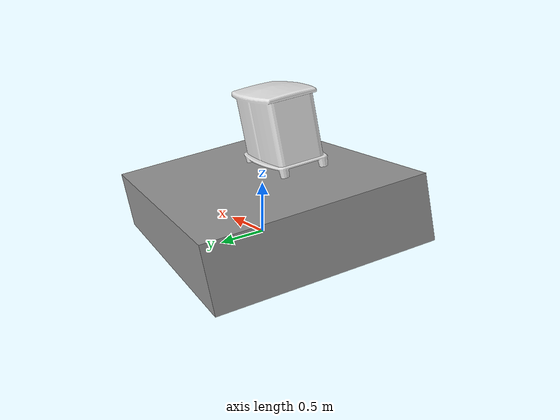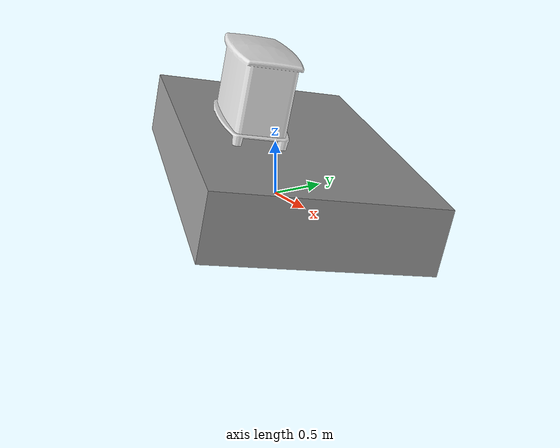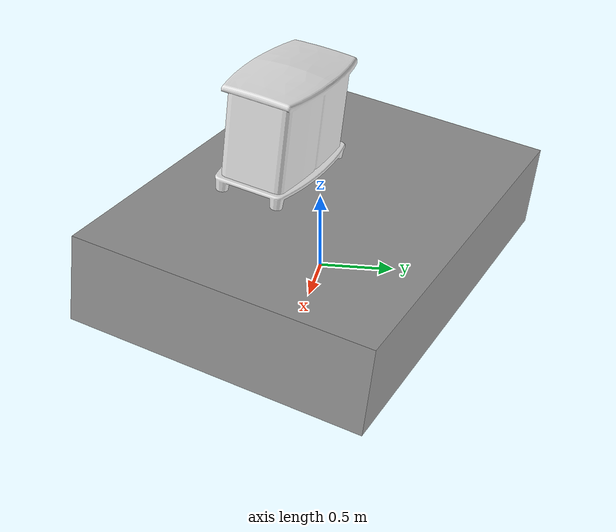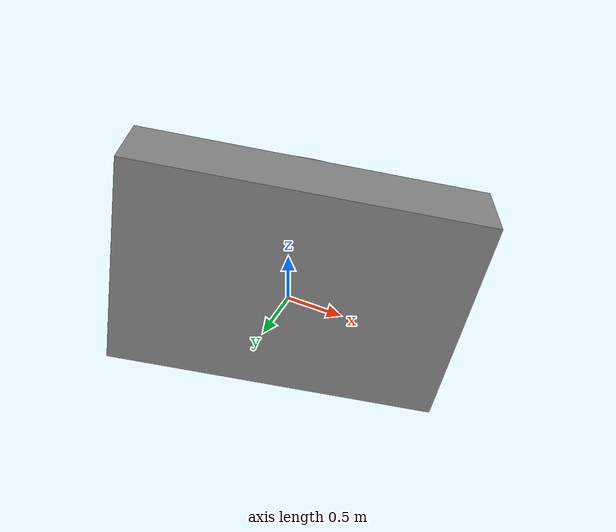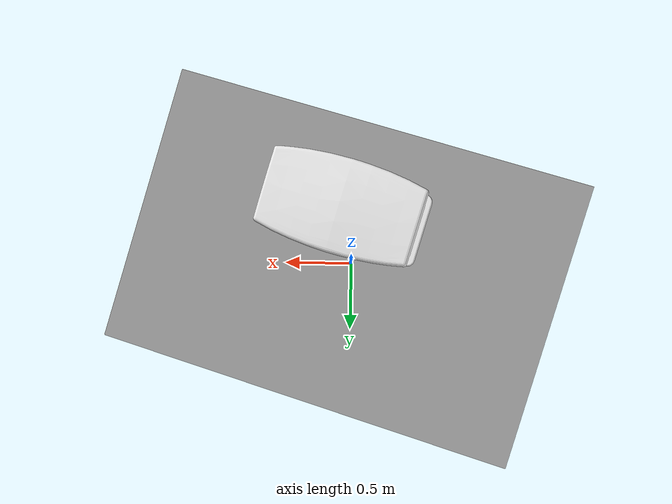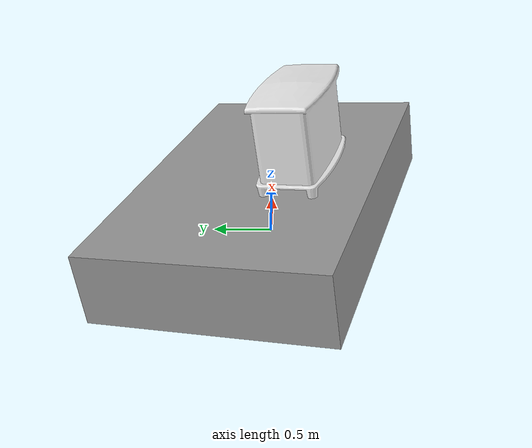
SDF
<?xml version='1.0'?>
<sdf version='1.6'>
  <model name='workpiece'>
    <link name='workbench'>
      <pose frame=''>0 0 0 0.095363 0.171487 1.28719</pose>
      <inertial>
        <pose frame=''>0 0.045455 0.327273 0 -0 0</pose>
        <mass>11000</mass>
        <inertia>
          <ixx>310.424</ixx>
          <ixy>0</ixy>
          <ixz>0</ixz>
          <iyy>83.8182</iyy>
          <iyz>-136.364</iyz>
          <izz>229.273</izz>
        </inertia>
      </inertial>
      <velocity_decay/>
      <gravity>1</gravity>
      <velocity_decay/>
      <self_collide>0</self_collide>
      <enable_wind>0</enable_wind>
      <kinematic>0</kinematic>
      <visual name='workbench_visual'>
        <pose frame=''>0 0 0.3 0 -0 0</pose>
        <geometry>
          <box>
            <size>2 3 0.6</size>
          </box>
        </geometry>
        <material>
          <script>
            <name>Gazebo/Gray</name>
            <uri>file://media/materials/scripts/gazebo.material</uri>
          </script>
        </material>
        <transparency>0</transparency>
        <cast_shadows>1</cast_shadows>
      </visual>
      <visual name='workbench_fixed_joint_lump__workpiece_visual_1'>
        <pose frame=''>0 -0.5 0.6 0 -0 1.57</pose>
        <geometry>
          <mesh>
            <scale>1 1 1</scale>
            <uri>/home/lindaqqiu/catkin_ws/src/m_mh24/m_mh24/meshes/drawer.STL</uri>
          </mesh>
        </geometry>
        <material>
          <script>
            <name>Gazebo/White</name>
            <uri>file://media/materials/scripts/gazebo.material</uri>
          </script>
        </material>
        <transparency>0</transparency>
        <cast_shadows>1</cast_shadows>
      </visual>
      <collision name='workbench_collision'>
        <laser_retro>0</laser_retro>
        <max_contacts>10</max_contacts>
        <pose frame=''>0 0 0 0 -0 0</pose>
        <geometry>
          <box>
            <size>2 3 0.6</size>
          </box>
        </geometry>
        <surface>
          <friction>
            <ode>
              <mu>1</mu>
              <mu2>1</mu2>
              <fdir1>0 0 0</fdir1>
              <slip1>0</slip1>
              <slip2>0</slip2>
            </ode>
            <torsional>
              <coefficient>1</coefficient>
              <patch_radius>0</patch_radius>
              <surface_radius>0</surface_radius>
              <use_patch_radius>1</use_patch_radius>
              <ode>
                <slip>0</slip>
              </ode>
            </torsional>
          </friction>
          <bounce>
            <restitution_coefficient>0</restitution_coefficient>
            <threshold>1e+06</threshold>
          </bounce>
          <contact>
            <collide_without_contact>0</collide_without_contact>
            <collide_without_contact_bitmask>1</collide_without_contact_bitmask>
            <collide_bitmask>1</collide_bitmask>
            <ode>
              <soft_cfm>0</soft_cfm>
              <soft_erp>0.2</soft_erp>
              <kp>1e+13</kp>
              <kd>1</kd>
              <max_vel>0.01</max_vel>
              <min_depth>0</min_depth>
            </ode>
            <bullet>
              <split_impulse>1</split_impulse>
              <split_impulse_penetration_threshold>-0.01</split_impulse_penetration_threshold>
              <soft_cfm>0</soft_cfm>
              <soft_erp>0.2</soft_erp>
              <kp>1e+13</kp>
              <kd>1</kd>
            </bullet>
          </contact>
        </surface>
      </collision>
      <collision name='workbench_fixed_joint_lump__workpiece_collision_1'>
        <laser_retro>0</laser_retro>
        <max_contacts>10</max_contacts>
        <pose frame=''>0 -0.5 0.6 0 -0 1.57</pose>
        <geometry>
          <mesh>
            <uri>/home/lindaqqiu/catkin_ws/src/m_mh24/m_mh24/meshes/drawer.STL</uri>
            <scale>1 1 1</scale>
          </mesh>
        </geometry>
        <surface>
          <friction>
            <ode>
              <mu>1</mu>
              <mu2>1</mu2>
              <fdir1>0 0 0</fdir1>
              <slip1>0</slip1>
              <slip2>0</slip2>
            </ode>
            <torsional>
              <coefficient>1</coefficient>
              <patch_radius>0</patch_radius>
              <surface_radius>0</surface_radius>
              <use_patch_radius>1</use_patch_radius>
              <ode>
                <slip>0</slip>
              </ode>
            </torsional>
          </friction>
          <bounce>
            <restitution_coefficient>0</restitution_coefficient>
            <threshold>1e+06</threshold>
          </bounce>
          <contact>
            <collide_without_contact>0</collide_without_contact>
            <collide_without_contact_bitmask>1</collide_without_contact_bitmask>
            <collide_bitmask>1</collide_bitmask>
            <ode>
              <soft_cfm>0</soft_cfm>
              <soft_erp>0.2</soft_erp>
              <kp>1e+13</kp>
              <kd>1</kd>
              <max_vel>0.01</max_vel>
              <min_depth>0</min_depth>
            </ode>
            <bullet>
              <split_impulse>1</split_impulse>
              <split_impulse_penetration_threshold>-0.01</split_impulse_penetration_threshold>
              <soft_cfm>0</soft_cfm>
              <soft_erp>0.2</soft_erp>
              <kp>1e+13</kp>
              <kd>1</kd>
            </bullet>
          </contact>
        </surface>
      </collision>
    </link>
    <static>1</static>
    <allow_auto_disable>1</allow_auto_disable>
  </model>
</sdf>
